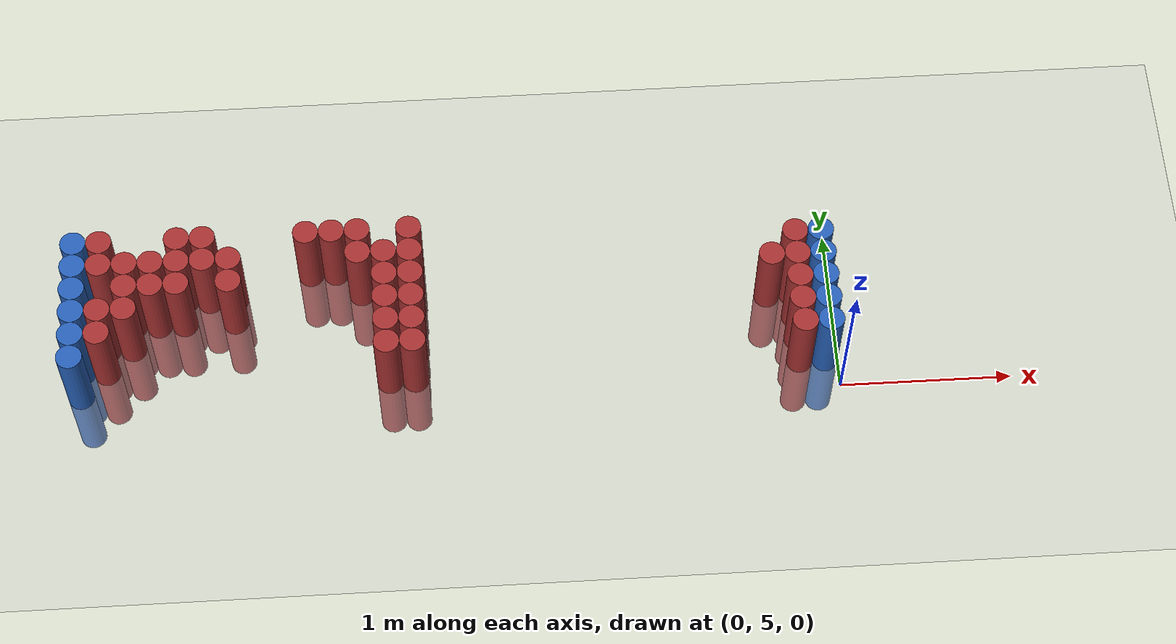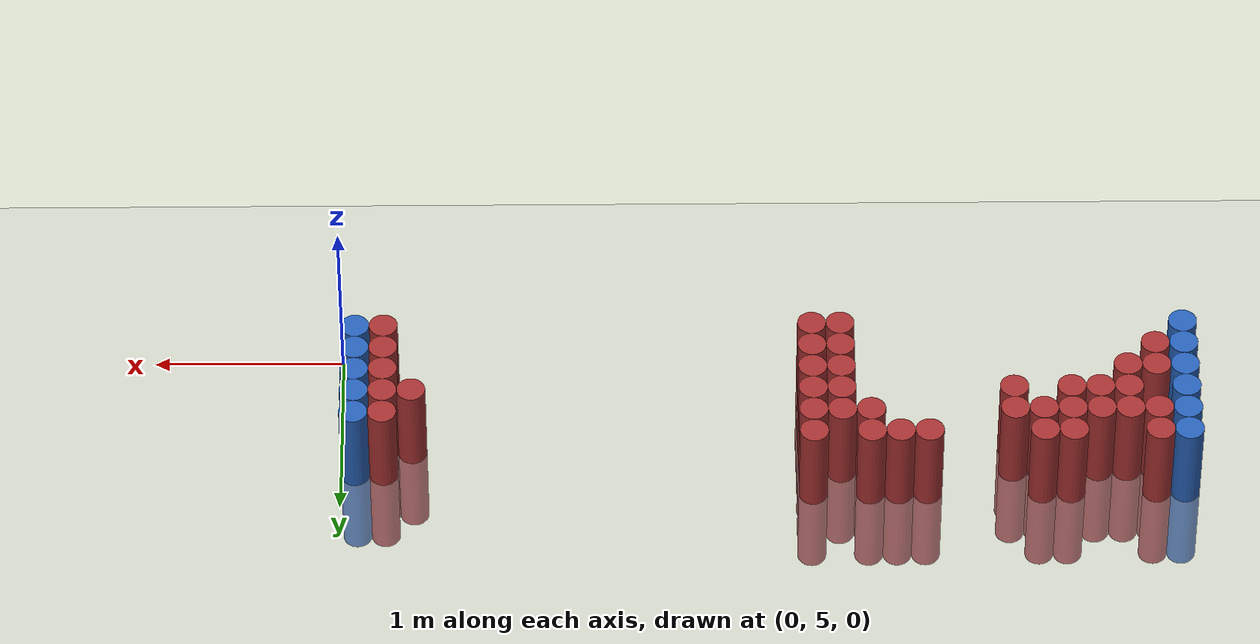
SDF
<sdf version="1.6">
 <world name="default">
  <model name="ground_plane">
   <static>1</static>
   <link name="link">
    <collision name="collision">
     <geometry><plane><normal>0 0 1</normal><size>100 100</size></plane></geometry>
     <surface><friction><ode><mu>100</mu><mu2>50</mu2></ode></friction></surface>
    </collision>
    <visual name="visual">
     <cast_shadows>0</cast_shadows>
     <geometry><plane><normal>0 0 1</normal><size>100 100</size></plane></geometry>
     <material>
      <script><uri>file://media/materials/scripts/gazebo.material</uri><name>Gazebo/Grey</name></script>
     </material>
    </visual>
   </link>
  </model>
  <model name="unit_cylinder_96">
   <static>1</static>
   <pose>-4.425000 5.175000 0.000000 0.000000 0.000000 0.000000</pose>
   <link name="link">
    <inertial>
     <mass>1</mass>
     <inertia><ixx>0.145833</ixx><ixy>0</ixy><ixz>0</ixz><iyy>0.145833</iyy><iyz>0</iyz><izz>0.125</izz></inertia>
    </inertial>
    <collision name="collision">
     <geometry><cylinder><radius>0.075000</radius><length>1</length></cylinder></geometry>
    </collision>
    <visual name="visual">
     <geometry><cylinder><radius>0.075000</radius><length>1</length></cylinder></geometry>
     <material>
      <ambient>0.152000 0.379000 0.720000 1</ambient>
      <diffuse>0.152000 0.379000 0.720000 1</diffuse>
     </material>
     <material>
      <script><name>Gazebo/Grey</name><uri>file://media/materials/scripts/gazebo.material</uri></script>
     </material>
    </visual>
   </link>
  </model>
  <model name="unit_cylinder_97">
   <static>1</static>
   <pose>-4.425000 5.325000 0.000000 0.000000 0.000000 0.000000</pose>
   <link name="link">
    <inertial>
     <mass>1</mass>
     <inertia><ixx>0.145833</ixx><ixy>0</ixy><ixz>0</ixz><iyy>0.145833</iyy><iyz>0</iyz><izz>0.125</izz></inertia>
    </inertial>
    <collision name="collision">
     <geometry><cylinder><radius>0.075000</radius><length>1</length></cylinder></geometry>
    </collision>
    <visual name="visual">
     <geometry><cylinder><radius>0.075000</radius><length>1</length></cylinder></geometry>
     <material>
      <ambient>0.152000 0.379000 0.720000 1</ambient>
      <diffuse>0.152000 0.379000 0.720000 1</diffuse>
     </material>
     <material>
      <script><name>Gazebo/Grey</name><uri>file://media/materials/scripts/gazebo.material</uri></script>
     </material>
    </visual>
   </link>
  </model>
  <model name="unit_cylinder_98">
   <static>1</static>
   <pose>-4.425000 5.475000 0.000000 0.000000 0.000000 0.000000</pose>
   <link name="link">
    <inertial>
     <mass>1</mass>
     <inertia><ixx>0.145833</ixx><ixy>0</ixy><ixz>0</ixz><iyy>0.145833</iyy><iyz>0</iyz><izz>0.125</izz></inertia>
    </inertial>
    <collision name="collision">
     <geometry><cylinder><radius>0.075000</radius><length>1</length></cylinder></geometry>
    </collision>
    <visual name="visual">
     <geometry><cylinder><radius>0.075000</radius><length>1</length></cylinder></geometry>
     <material>
      <ambient>0.152000 0.379000 0.720000 1</ambient>
      <diffuse>0.152000 0.379000 0.720000 1</diffuse>
     </material>
     <material>
      <script><name>Gazebo/Grey</name><uri>file://media/materials/scripts/gazebo.material</uri></script>
     </material>
    </visual>
   </link>
  </model>
  <model name="unit_cylinder_99">
   <static>1</static>
   <pose>-4.425000 5.625000 0.000000 0.000000 0.000000 0.000000</pose>
   <link name="link">
    <inertial>
     <mass>1</mass>
     <inertia><ixx>0.145833</ixx><ixy>0</ixy><ixz>0</ixz><iyy>0.145833</iyy><iyz>0</iyz><izz>0.125</izz></inertia>
    </inertial>
    <collision name="collision">
     <geometry><cylinder><radius>0.075000</radius><length>1</length></cylinder></geometry>
    </collision>
    <visual name="visual">
     <geometry><cylinder><radius>0.075000</radius><length>1</length></cylinder></geometry>
     <material>
      <ambient>0.152000 0.379000 0.720000 1</ambient>
      <diffuse>0.152000 0.379000 0.720000 1</diffuse>
     </material>
     <material>
      <script><name>Gazebo/Grey</name><uri>file://media/materials/scripts/gazebo.material</uri></script>
     </material>
    </visual>
   </link>
  </model>
  <model name="unit_cylinder_100">
   <static>1</static>
   <pose>-4.425000 5.775000 0.000000 0.000000 0.000000 0.000000</pose>
   <link name="link">
    <inertial>
     <mass>1</mass>
     <inertia><ixx>0.145833</ixx><ixy>0</ixy><ixz>0</ixz><iyy>0.145833</iyy><iyz>0</iyz><izz>0.125</izz></inertia>
    </inertial>
    <collision name="collision">
     <geometry><cylinder><radius>0.075000</radius><length>1</length></cylinder></geometry>
    </collision>
    <visual name="visual">
     <geometry><cylinder><radius>0.075000</radius><length>1</length></cylinder></geometry>
     <material>
      <ambient>0.152000 0.379000 0.720000 1</ambient>
      <diffuse>0.152000 0.379000 0.720000 1</diffuse>
     </material>
     <material>
      <script><name>Gazebo/Grey</name><uri>file://media/materials/scripts/gazebo.material</uri></script>
     </material>
    </visual>
   </link>
  </model>
  <model name="unit_cylinder_101">
   <static>1</static>
   <pose>-4.425000 5.925000 0.000000 0.000000 0.000000 0.000000</pose>
   <link name="link">
    <inertial>
     <mass>1</mass>
     <inertia><ixx>0.145833</ixx><ixy>0</ixy><ixz>0</ixz><iyy>0.145833</iyy><iyz>0</iyz><izz>0.125</izz></inertia>
    </inertial>
    <collision name="collision">
     <geometry><cylinder><radius>0.075000</radius><length>1</length></cylinder></geometry>
    </collision>
    <visual name="visual">
     <geometry><cylinder><radius>0.075000</radius><length>1</length></cylinder></geometry>
     <material>
      <ambient>0.152000 0.379000 0.720000 1</ambient>
      <diffuse>0.152000 0.379000 0.720000 1</diffuse>
     </material>
     <material>
      <script><name>Gazebo/Grey</name><uri>file://media/materials/scripts/gazebo.material</uri></script>
     </material>
    </visual>
   </link>
  </model>
  <model name="unit_cylinder_126">
   <static>1</static>
   <pose>-4.275000 5.325000 0.000000 0.000000 0.000000 0.000000</pose>
   <link name="link">
    <inertial>
     <mass>1</mass>
     <inertia><ixx>0.145833</ixx><ixy>0</ixy><ixz>0</ixz><iyy>0.145833</iyy><iyz>0</iyz><izz>0.125</izz></inertia>
    </inertial>
    <collision name="collision">
     <geometry><cylinder><radius>0.075000</radius><length>1</length></cylinder></geometry>
    </collision>
    <visual name="visual">
     <geometry><cylinder><radius>0.075000</radius><length>1</length></cylinder></geometry>
     <material>
      <ambient>0.648000 0.192000 0.192000 1</ambient>
      <diffuse>0.648000 0.192000 0.192000 1</diffuse>
     </material>
     <material>
      <script><name>Gazebo/Grey</name><uri>file://media/materials/scripts/gazebo.material</uri></script>
     </material>
    </visual>
   </link>
  </model>
  <model name="unit_cylinder_127">
   <static>1</static>
   <pose>-4.275000 5.475000 0.000000 0.000000 0.000000 0.000000</pose>
   <link name="link">
    <inertial>
     <mass>1</mass>
     <inertia><ixx>0.145833</ixx><ixy>0</ixy><ixz>0</ixz><iyy>0.145833</iyy><iyz>0</iyz><izz>0.125</izz></inertia>
    </inertial>
    <collision name="collision">
     <geometry><cylinder><radius>0.075000</radius><length>1</length></cylinder></geometry>
    </collision>
    <visual name="visual">
     <geometry><cylinder><radius>0.075000</radius><length>1</length></cylinder></geometry>
     <material>
      <ambient>0.648000 0.192000 0.192000 1</ambient>
      <diffuse>0.648000 0.192000 0.192000 1</diffuse>
     </material>
     <material>
      <script><name>Gazebo/Grey</name><uri>file://media/materials/scripts/gazebo.material</uri></script>
     </material>
    </visual>
   </link>
  </model>
  <model name="unit_cylinder_128">
   <static>1</static>
   <pose>-4.275000 5.775000 0.000000 0.000000 0.000000 0.000000</pose>
   <link name="link">
    <inertial>
     <mass>1</mass>
     <inertia><ixx>0.145833</ixx><ixy>0</ixy><ixz>0</ixz><iyy>0.145833</iyy><iyz>0</iyz><izz>0.125</izz></inertia>
    </inertial>
    <collision name="collision">
     <geometry><cylinder><radius>0.075000</radius><length>1</length></cylinder></geometry>
    </collision>
    <visual name="visual">
     <geometry><cylinder><radius>0.075000</radius><length>1</length></cylinder></geometry>
     <material>
      <ambient>0.648000 0.192000 0.192000 1</ambient>
      <diffuse>0.648000 0.192000 0.192000 1</diffuse>
     </material>
     <material>
      <script><name>Gazebo/Grey</name><uri>file://media/materials/scripts/gazebo.material</uri></script>
     </material>
    </visual>
   </link>
  </model>
  <model name="unit_cylinder_129">
   <static>1</static>
   <pose>-4.275000 5.925000 0.000000 0.000000 0.000000 0.000000</pose>
   <link name="link">
    <inertial>
     <mass>1</mass>
     <inertia><ixx>0.145833</ixx><ixy>0</ixy><ixz>0</ixz><iyy>0.145833</iyy><iyz>0</iyz><izz>0.125</izz></inertia>
    </inertial>
    <collision name="collision">
     <geometry><cylinder><radius>0.075000</radius><length>1</length></cylinder></geometry>
    </collision>
    <visual name="visual">
     <geometry><cylinder><radius>0.075000</radius><length>1</length></cylinder></geometry>
     <material>
      <ambient>0.648000 0.192000 0.192000 1</ambient>
      <diffuse>0.648000 0.192000 0.192000 1</diffuse>
     </material>
     <material>
      <script><name>Gazebo/Grey</name><uri>file://media/materials/scripts/gazebo.material</uri></script>
     </material>
    </visual>
   </link>
  </model>
  <model name="unit_cylinder_145">
   <static>1</static>
   <pose>-4.125000 5.475000 0.000000 0.000000 0.000000 0.000000</pose>
   <link name="link">
    <inertial>
     <mass>1</mass>
     <inertia><ixx>0.145833</ixx><ixy>0</ixy><ixz>0</ixz><iyy>0.145833</iyy><iyz>0</iyz><izz>0.125</izz></inertia>
    </inertial>
    <collision name="collision">
     <geometry><cylinder><radius>0.075000</radius><length>1</length></cylinder></geometry>
    </collision>
    <visual name="visual">
     <geometry><cylinder><radius>0.075000</radius><length>1</length></cylinder></geometry>
     <material>
      <ambient>0.648000 0.192000 0.192000 1</ambient>
      <diffuse>0.648000 0.192000 0.192000 1</diffuse>
     </material>
     <material>
      <script><name>Gazebo/Grey</name><uri>file://media/materials/scripts/gazebo.material</uri></script>
     </material>
    </visual>
   </link>
  </model>
  <model name="unit_cylinder_146">
   <static>1</static>
   <pose>-4.125000 5.625000 0.000000 0.000000 0.000000 0.000000</pose>
   <link name="link">
    <inertial>
     <mass>1</mass>
     <inertia><ixx>0.145833</ixx><ixy>0</ixy><ixz>0</ixz><iyy>0.145833</iyy><iyz>0</iyz><izz>0.125</izz></inertia>
    </inertial>
    <collision name="collision">
     <geometry><cylinder><radius>0.075000</radius><length>1</length></cylinder></geometry>
    </collision>
    <visual name="visual">
     <geometry><cylinder><radius>0.075000</radius><length>1</length></cylinder></geometry>
     <material>
      <ambient>0.648000 0.192000 0.192000 1</ambient>
      <diffuse>0.648000 0.192000 0.192000 1</diffuse>
     </material>
     <material>
      <script><name>Gazebo/Grey</name><uri>file://media/materials/scripts/gazebo.material</uri></script>
     </material>
    </visual>
   </link>
  </model>
  <model name="unit_cylinder_147">
   <static>1</static>
   <pose>-4.125000 5.775000 0.000000 0.000000 0.000000 0.000000</pose>
   <link name="link">
    <inertial>
     <mass>1</mass>
     <inertia><ixx>0.145833</ixx><ixy>0</ixy><ixz>0</ixz><iyy>0.145833</iyy><iyz>0</iyz><izz>0.125</izz></inertia>
    </inertial>
    <collision name="collision">
     <geometry><cylinder><radius>0.075000</radius><length>1</length></cylinder></geometry>
    </collision>
    <visual name="visual">
     <geometry><cylinder><radius>0.075000</radius><length>1</length></cylinder></geometry>
     <material>
      <ambient>0.648000 0.192000 0.192000 1</ambient>
      <diffuse>0.648000 0.192000 0.192000 1</diffuse>
     </material>
     <material>
      <script><name>Gazebo/Grey</name><uri>file://media/materials/scripts/gazebo.material</uri></script>
     </material>
    </visual>
   </link>
  </model>
  <model name="unit_cylinder_153">
   <static>1</static>
   <pose>-3.975000 5.625000 0.000000 0.000000 0.000000 0.000000</pose>
   <link name="link">
    <inertial>
     <mass>1</mass>
     <inertia><ixx>0.145833</ixx><ixy>0</ixy><ixz>0</ixz><iyy>0.145833</iyy><iyz>0</iyz><izz>0.125</izz></inertia>
    </inertial>
    <collision name="collision">
     <geometry><cylinder><radius>0.075000</radius><length>1</length></cylinder></geometry>
    </collision>
    <visual name="visual">
     <geometry><cylinder><radius>0.075000</radius><length>1</length></cylinder></geometry>
     <material>
      <ambient>0.648000 0.192000 0.192000 1</ambient>
      <diffuse>0.648000 0.192000 0.192000 1</diffuse>
     </material>
     <material>
      <script><name>Gazebo/Grey</name><uri>file://media/materials/scripts/gazebo.material</uri></script>
     </material>
    </visual>
   </link>
  </model>
  <model name="unit_cylinder_154">
   <static>1</static>
   <pose>-3.975000 5.775000 0.000000 0.000000 0.000000 0.000000</pose>
   <link name="link">
    <inertial>
     <mass>1</mass>
     <inertia><ixx>0.145833</ixx><ixy>0</ixy><ixz>0</ixz><iyy>0.145833</iyy><iyz>0</iyz><izz>0.125</izz></inertia>
    </inertial>
    <collision name="collision">
     <geometry><cylinder><radius>0.075000</radius><length>1</length></cylinder></geometry>
    </collision>
    <visual name="visual">
     <geometry><cylinder><radius>0.075000</radius><length>1</length></cylinder></geometry>
     <material>
      <ambient>0.648000 0.192000 0.192000 1</ambient>
      <diffuse>0.648000 0.192000 0.192000 1</diffuse>
     </material>
     <material>
      <script><name>Gazebo/Grey</name><uri>file://media/materials/scripts/gazebo.material</uri></script>
     </material>
    </visual>
   </link>
  </model>
  <model name="unit_cylinder_158">
   <static>1</static>
   <pose>-3.825000 5.625000 0.000000 0.000000 0.000000 0.000000</pose>
   <link name="link">
    <inertial>
     <mass>1</mass>
     <inertia><ixx>0.145833</ixx><ixy>0</ixy><ixz>0</ixz><iyy>0.145833</iyy><iyz>0</iyz><izz>0.125</izz></inertia>
    </inertial>
    <collision name="collision">
     <geometry><cylinder><radius>0.075000</radius><length>1</length></cylinder></geometry>
    </collision>
    <visual name="visual">
     <geometry><cylinder><radius>0.075000</radius><length>1</length></cylinder></geometry>
     <material>
      <ambient>0.648000 0.192000 0.192000 1</ambient>
      <diffuse>0.648000 0.192000 0.192000 1</diffuse>
     </material>
     <material>
      <script><name>Gazebo/Grey</name><uri>file://media/materials/scripts/gazebo.material</uri></script>
     </material>
    </visual>
   </link>
  </model>
  <model name="unit_cylinder_159">
   <static>1</static>
   <pose>-3.825000 5.775000 0.000000 0.000000 0.000000 0.000000</pose>
   <link name="link">
    <inertial>
     <mass>1</mass>
     <inertia><ixx>0.145833</ixx><ixy>0</ixy><ixz>0</ixz><iyy>0.145833</iyy><iyz>0</iyz><izz>0.125</izz></inertia>
    </inertial>
    <collision name="collision">
     <geometry><cylinder><radius>0.075000</radius><length>1</length></cylinder></geometry>
    </collision>
    <visual name="visual">
     <geometry><cylinder><radius>0.075000</radius><length>1</length></cylinder></geometry>
     <material>
      <ambient>0.648000 0.192000 0.192000 1</ambient>
      <diffuse>0.648000 0.192000 0.192000 1</diffuse>
     </material>
     <material>
      <script><name>Gazebo/Grey</name><uri>file://media/materials/scripts/gazebo.material</uri></script>
     </material>
    </visual>
   </link>
  </model>
  <model name="unit_cylinder_160">
   <static>1</static>
   <pose>-3.825000 5.925000 0.000000 0.000000 0.000000 0.000000</pose>
   <link name="link">
    <inertial>
     <mass>1</mass>
     <inertia><ixx>0.145833</ixx><ixy>0</ixy><ixz>0</ixz><iyy>0.145833</iyy><iyz>0</iyz><izz>0.125</izz></inertia>
    </inertial>
    <collision name="collision">
     <geometry><cylinder><radius>0.075000</radius><length>1</length></cylinder></geometry>
    </collision>
    <visual name="visual">
     <geometry><cylinder><radius>0.075000</radius><length>1</length></cylinder></geometry>
     <material>
      <ambient>0.648000 0.192000 0.192000 1</ambient>
      <diffuse>0.648000 0.192000 0.192000 1</diffuse>
     </material>
     <material>
      <script><name>Gazebo/Grey</name><uri>file://media/materials/scripts/gazebo.material</uri></script>
     </material>
    </visual>
   </link>
  </model>
  <model name="unit_cylinder_164">
   <static>1</static>
   <pose>-3.675000 5.775000 0.000000 0.000000 0.000000 0.000000</pose>
   <link name="link">
    <inertial>
     <mass>1</mass>
     <inertia><ixx>0.145833</ixx><ixy>0</ixy><ixz>0</ixz><iyy>0.145833</iyy><iyz>0</iyz><izz>0.125</izz></inertia>
    </inertial>
    <collision name="collision">
     <geometry><cylinder><radius>0.075000</radius><length>1</length></cylinder></geometry>
    </collision>
    <visual name="visual">
     <geometry><cylinder><radius>0.075000</radius><length>1</length></cylinder></geometry>
     <material>
      <ambient>0.648000 0.192000 0.192000 1</ambient>
      <diffuse>0.648000 0.192000 0.192000 1</diffuse>
     </material>
     <material>
      <script><name>Gazebo/Grey</name><uri>file://media/materials/scripts/gazebo.material</uri></script>
     </material>
    </visual>
   </link>
  </model>
  <model name="unit_cylinder_165">
   <static>1</static>
   <pose>-3.675000 5.925000 0.000000 0.000000 0.000000 0.000000</pose>
   <link name="link">
    <inertial>
     <mass>1</mass>
     <inertia><ixx>0.145833</ixx><ixy>0</ixy><ixz>0</ixz><iyy>0.145833</iyy><iyz>0</iyz><izz>0.125</izz></inertia>
    </inertial>
    <collision name="collision">
     <geometry><cylinder><radius>0.075000</radius><length>1</length></cylinder></geometry>
    </collision>
    <visual name="visual">
     <geometry><cylinder><radius>0.075000</radius><length>1</length></cylinder></geometry>
     <material>
      <ambient>0.648000 0.192000 0.192000 1</ambient>
      <diffuse>0.648000 0.192000 0.192000 1</diffuse>
     </material>
     <material>
      <script><name>Gazebo/Grey</name><uri>file://media/materials/scripts/gazebo.material</uri></script>
     </material>
    </visual>
   </link>
  </model>
  <model name="unit_cylinder_171">
   <static>1</static>
   <pose>-3.525000 5.625000 0.000000 0.000000 0.000000 0.000000</pose>
   <link name="link">
    <inertial>
     <mass>1</mass>
     <inertia><ixx>0.145833</ixx><ixy>0</ixy><ixz>0</ixz><iyy>0.145833</iyy><iyz>0</iyz><izz>0.125</izz></inertia>
    </inertial>
    <collision name="collision">
     <geometry><cylinder><radius>0.075000</radius><length>1</length></cylinder></geometry>
    </collision>
    <visual name="visual">
     <geometry><cylinder><radius>0.075000</radius><length>1</length></cylinder></geometry>
     <material>
      <ambient>0.648000 0.192000 0.192000 1</ambient>
      <diffuse>0.648000 0.192000 0.192000 1</diffuse>
     </material>
     <material>
      <script><name>Gazebo/Grey</name><uri>file://media/materials/scripts/gazebo.material</uri></script>
     </material>
    </visual>
   </link>
  </model>
  <model name="unit_cylinder_172">
   <static>1</static>
   <pose>-3.525000 5.775000 0.000000 0.000000 0.000000 0.000000</pose>
   <link name="link">
    <inertial>
     <mass>1</mass>
     <inertia><ixx>0.145833</ixx><ixy>0</ixy><ixz>0</ixz><iyy>0.145833</iyy><iyz>0</iyz><izz>0.125</izz></inertia>
    </inertial>
    <collision name="collision">
     <geometry><cylinder><radius>0.075000</radius><length>1</length></cylinder></geometry>
    </collision>
    <visual name="visual">
     <geometry><cylinder><radius>0.075000</radius><length>1</length></cylinder></geometry>
     <material>
      <ambient>0.648000 0.192000 0.192000 1</ambient>
      <diffuse>0.648000 0.192000 0.192000 1</diffuse>
     </material>
     <material>
      <script><name>Gazebo/Grey</name><uri>file://media/materials/scripts/gazebo.material</uri></script>
     </material>
    </visual>
   </link>
  </model>
  <model name="unit_cylinder_189">
   <static>1</static>
   <pose>-3.075000 5.925000 0.000000 0.000000 0.000000 0.000000</pose>
   <link name="link">
    <inertial>
     <mass>1</mass>
     <inertia><ixx>0.145833</ixx><ixy>0</ixy><ixz>0</ixz><iyy>0.145833</iyy><iyz>0</iyz><izz>0.125</izz></inertia>
    </inertial>
    <collision name="collision">
     <geometry><cylinder><radius>0.075000</radius><length>1</length></cylinder></geometry>
    </collision>
    <visual name="visual">
     <geometry><cylinder><radius>0.075000</radius><length>1</length></cylinder></geometry>
     <material>
      <ambient>0.648000 0.192000 0.192000 1</ambient>
      <diffuse>0.648000 0.192000 0.192000 1</diffuse>
     </material>
     <material>
      <script><name>Gazebo/Grey</name><uri>file://media/materials/scripts/gazebo.material</uri></script>
     </material>
    </visual>
   </link>
  </model>
  <model name="unit_cylinder_200">
   <static>1</static>
   <pose>-2.925000 5.925000 0.000000 0.000000 0.000000 0.000000</pose>
   <link name="link">
    <inertial>
     <mass>1</mass>
     <inertia><ixx>0.145833</ixx><ixy>0</ixy><ixz>0</ixz><iyy>0.145833</iyy><iyz>0</iyz><izz>0.125</izz></inertia>
    </inertial>
    <collision name="collision">
     <geometry><cylinder><radius>0.075000</radius><length>1</length></cylinder></geometry>
    </collision>
    <visual name="visual">
     <geometry><cylinder><radius>0.075000</radius><length>1</length></cylinder></geometry>
     <material>
      <ambient>0.648000 0.192000 0.192000 1</ambient>
      <diffuse>0.648000 0.192000 0.192000 1</diffuse>
     </material>
     <material>
      <script><name>Gazebo/Grey</name><uri>file://media/materials/scripts/gazebo.material</uri></script>
     </material>
    </visual>
   </link>
  </model>
  <model name="unit_cylinder_210">
   <static>1</static>
   <pose>-2.775000 5.775000 0.000000 0.000000 0.000000 0.000000</pose>
   <link name="link">
    <inertial>
     <mass>1</mass>
     <inertia><ixx>0.145833</ixx><ixy>0</ixy><ixz>0</ixz><iyy>0.145833</iyy><iyz>0</iyz><izz>0.125</izz></inertia>
    </inertial>
    <collision name="collision">
     <geometry><cylinder><radius>0.075000</radius><length>1</length></cylinder></geometry>
    </collision>
    <visual name="visual">
     <geometry><cylinder><radius>0.075000</radius><length>1</length></cylinder></geometry>
     <material>
      <ambient>0.648000 0.192000 0.192000 1</ambient>
      <diffuse>0.648000 0.192000 0.192000 1</diffuse>
     </material>
     <material>
      <script><name>Gazebo/Grey</name><uri>file://media/materials/scripts/gazebo.material</uri></script>
     </material>
    </visual>
   </link>
  </model>
  <model name="unit_cylinder_211">
   <static>1</static>
   <pose>-2.775000 5.925000 0.000000 0.000000 0.000000 0.000000</pose>
   <link name="link">
    <inertial>
     <mass>1</mass>
     <inertia><ixx>0.145833</ixx><ixy>0</ixy><ixz>0</ixz><iyy>0.145833</iyy><iyz>0</iyz><izz>0.125</izz></inertia>
    </inertial>
    <collision name="collision">
     <geometry><cylinder><radius>0.075000</radius><length>1</length></cylinder></geometry>
    </collision>
    <visual name="visual">
     <geometry><cylinder><radius>0.075000</radius><length>1</length></cylinder></geometry>
     <material>
      <ambient>0.648000 0.192000 0.192000 1</ambient>
      <diffuse>0.648000 0.192000 0.192000 1</diffuse>
     </material>
     <material>
      <script><name>Gazebo/Grey</name><uri>file://media/materials/scripts/gazebo.material</uri></script>
     </material>
    </visual>
   </link>
  </model>
  <model name="unit_cylinder_220">
   <static>1</static>
   <pose>-2.625000 5.175000 0.000000 0.000000 0.000000 0.000000</pose>
   <link name="link">
    <inertial>
     <mass>1</mass>
     <inertia><ixx>0.145833</ixx><ixy>0</ixy><ixz>0</ixz><iyy>0.145833</iyy><iyz>0</iyz><izz>0.125</izz></inertia>
    </inertial>
    <collision name="collision">
     <geometry><cylinder><radius>0.075000</radius><length>1</length></cylinder></geometry>
    </collision>
    <visual name="visual">
     <geometry><cylinder><radius>0.075000</radius><length>1</length></cylinder></geometry>
     <material>
      <ambient>0.648000 0.192000 0.192000 1</ambient>
      <diffuse>0.648000 0.192000 0.192000 1</diffuse>
     </material>
     <material>
      <script><name>Gazebo/Grey</name><uri>file://media/materials/scripts/gazebo.material</uri></script>
     </material>
    </visual>
   </link>
  </model>
  <model name="unit_cylinder_221">
   <static>1</static>
   <pose>-2.625000 5.325000 0.000000 0.000000 0.000000 0.000000</pose>
   <link name="link">
    <inertial>
     <mass>1</mass>
     <inertia><ixx>0.145833</ixx><ixy>0</ixy><ixz>0</ixz><iyy>0.145833</iyy><iyz>0</iyz><izz>0.125</izz></inertia>
    </inertial>
    <collision name="collision">
     <geometry><cylinder><radius>0.075000</radius><length>1</length></cylinder></geometry>
    </collision>
    <visual name="visual">
     <geometry><cylinder><radius>0.075000</radius><length>1</length></cylinder></geometry>
     <material>
      <ambient>0.648000 0.192000 0.192000 1</ambient>
      <diffuse>0.648000 0.192000 0.192000 1</diffuse>
     </material>
     <material>
      <script><name>Gazebo/Grey</name><uri>file://media/materials/scripts/gazebo.material</uri></script>
     </material>
    </visual>
   </link>
  </model>
  <model name="unit_cylinder_222">
   <static>1</static>
   <pose>-2.625000 5.475000 0.000000 0.000000 0.000000 0.000000</pose>
   <link name="link">
    <inertial>
     <mass>1</mass>
     <inertia><ixx>0.145833</ixx><ixy>0</ixy><ixz>0</ixz><iyy>0.145833</iyy><iyz>0</iyz><izz>0.125</izz></inertia>
    </inertial>
    <collision name="collision">
     <geometry><cylinder><radius>0.075000</radius><length>1</length></cylinder></geometry>
    </collision>
    <visual name="visual">
     <geometry><cylinder><radius>0.075000</radius><length>1</length></cylinder></geometry>
     <material>
      <ambient>0.648000 0.192000 0.192000 1</ambient>
      <diffuse>0.648000 0.192000 0.192000 1</diffuse>
     </material>
     <material>
      <script><name>Gazebo/Grey</name><uri>file://media/materials/scripts/gazebo.material</uri></script>
     </material>
    </visual>
   </link>
  </model>
  <model name="unit_cylinder_223">
   <static>1</static>
   <pose>-2.625000 5.625000 0.000000 0.000000 0.000000 0.000000</pose>
   <link name="link">
    <inertial>
     <mass>1</mass>
     <inertia><ixx>0.145833</ixx><ixy>0</ixy><ixz>0</ixz><iyy>0.145833</iyy><iyz>0</iyz><izz>0.125</izz></inertia>
    </inertial>
    <collision name="collision">
     <geometry><cylinder><radius>0.075000</radius><length>1</length></cylinder></geometry>
    </collision>
    <visual name="visual">
     <geometry><cylinder><radius>0.075000</radius><length>1</length></cylinder></geometry>
     <material>
      <ambient>0.648000 0.192000 0.192000 1</ambient>
      <diffuse>0.648000 0.192000 0.192000 1</diffuse>
     </material>
     <material>
      <script><name>Gazebo/Grey</name><uri>file://media/materials/scripts/gazebo.material</uri></script>
     </material>
    </visual>
   </link>
  </model>
  <model name="unit_cylinder_224">
   <static>1</static>
   <pose>-2.625000 5.775000 0.000000 0.000000 0.000000 0.000000</pose>
   <link name="link">
    <inertial>
     <mass>1</mass>
     <inertia><ixx>0.145833</ixx><ixy>0</ixy><ixz>0</ixz><iyy>0.145833</iyy><iyz>0</iyz><izz>0.125</izz></inertia>
    </inertial>
    <collision name="collision">
     <geometry><cylinder><radius>0.075000</radius><length>1</length></cylinder></geometry>
    </collision>
    <visual name="visual">
     <geometry><cylinder><radius>0.075000</radius><length>1</length></cylinder></geometry>
     <material>
      <ambient>0.648000 0.192000 0.192000 1</ambient>
      <diffuse>0.648000 0.192000 0.192000 1</diffuse>
     </material>
     <material>
      <script><name>Gazebo/Grey</name><uri>file://media/materials/scripts/gazebo.material</uri></script>
     </material>
    </visual>
   </link>
  </model>
  <model name="unit_cylinder_229">
   <static>1</static>
   <pose>-2.475000 5.175000 0.000000 0.000000 0.000000 0.000000</pose>
   <link name="link">
    <inertial>
     <mass>1</mass>
     <inertia><ixx>0.145833</ixx><ixy>0</ixy><ixz>0</ixz><iyy>0.145833</iyy><iyz>0</iyz><izz>0.125</izz></inertia>
    </inertial>
    <collision name="collision">
     <geometry><cylinder><radius>0.075000</radius><length>1</length></cylinder></geometry>
    </collision>
    <visual name="visual">
     <geometry><cylinder><radius>0.075000</radius><length>1</length></cylinder></geometry>
     <material>
      <ambient>0.648000 0.192000 0.192000 1</ambient>
      <diffuse>0.648000 0.192000 0.192000 1</diffuse>
     </material>
     <material>
      <script><name>Gazebo/Grey</name><uri>file://media/materials/scripts/gazebo.material</uri></script>
     </material>
    </visual>
   </link>
  </model>
  <model name="unit_cylinder_230">
   <static>1</static>
   <pose>-2.475000 5.325000 0.000000 0.000000 0.000000 0.000000</pose>
   <link name="link">
    <inertial>
     <mass>1</mass>
     <inertia><ixx>0.145833</ixx><ixy>0</ixy><ixz>0</ixz><iyy>0.145833</iyy><iyz>0</iyz><izz>0.125</izz></inertia>
    </inertial>
    <collision name="collision">
     <geometry><cylinder><radius>0.075000</radius><length>1</length></cylinder></geometry>
    </collision>
    <visual name="visual">
     <geometry><cylinder><radius>0.075000</radius><length>1</length></cylinder></geometry>
     <material>
      <ambient>0.648000 0.192000 0.192000 1</ambient>
      <diffuse>0.648000 0.192000 0.192000 1</diffuse>
     </material>
     <material>
      <script><name>Gazebo/Grey</name><uri>file://media/materials/scripts/gazebo.material</uri></script>
     </material>
    </visual>
   </link>
  </model>
  <model name="unit_cylinder_231">
   <static>1</static>
   <pose>-2.475000 5.475000 0.000000 0.000000 0.000000 0.000000</pose>
   <link name="link">
    <inertial>
     <mass>1</mass>
     <inertia><ixx>0.145833</ixx><ixy>0</ixy><ixz>0</ixz><iyy>0.145833</iyy><iyz>0</iyz><izz>0.125</izz></inertia>
    </inertial>
    <collision name="collision">
     <geometry><cylinder><radius>0.075000</radius><length>1</length></cylinder></geometry>
    </collision>
    <visual name="visual">
     <geometry><cylinder><radius>0.075000</radius><length>1</length></cylinder></geometry>
     <material>
      <ambient>0.648000 0.192000 0.192000 1</ambient>
      <diffuse>0.648000 0.192000 0.192000 1</diffuse>
     </material>
     <material>
      <script><name>Gazebo/Grey</name><uri>file://media/materials/scripts/gazebo.material</uri></script>
     </material>
    </visual>
   </link>
  </model>
  <model name="unit_cylinder_232">
   <static>1</static>
   <pose>-2.475000 5.625000 0.000000 0.000000 0.000000 0.000000</pose>
   <link name="link">
    <inertial>
     <mass>1</mass>
     <inertia><ixx>0.145833</ixx><ixy>0</ixy><ixz>0</ixz><iyy>0.145833</iyy><iyz>0</iyz><izz>0.125</izz></inertia>
    </inertial>
    <collision name="collision">
     <geometry><cylinder><radius>0.075000</radius><length>1</length></cylinder></geometry>
    </collision>
    <visual name="visual">
     <geometry><cylinder><radius>0.075000</radius><length>1</length></cylinder></geometry>
     <material>
      <ambient>0.648000 0.192000 0.192000 1</ambient>
      <diffuse>0.648000 0.192000 0.192000 1</diffuse>
     </material>
     <material>
      <script><name>Gazebo/Grey</name><uri>file://media/materials/scripts/gazebo.material</uri></script>
     </material>
    </visual>
   </link>
  </model>
  <model name="unit_cylinder_233">
   <static>1</static>
   <pose>-2.475000 5.775000 0.000000 0.000000 0.000000 0.000000</pose>
   <link name="link">
    <inertial>
     <mass>1</mass>
     <inertia><ixx>0.145833</ixx><ixy>0</ixy><ixz>0</ixz><iyy>0.145833</iyy><iyz>0</iyz><izz>0.125</izz></inertia>
    </inertial>
    <collision name="collision">
     <geometry><cylinder><radius>0.075000</radius><length>1</length></cylinder></geometry>
    </collision>
    <visual name="visual">
     <geometry><cylinder><radius>0.075000</radius><length>1</length></cylinder></geometry>
     <material>
      <ambient>0.648000 0.192000 0.192000 1</ambient>
      <diffuse>0.648000 0.192000 0.192000 1</diffuse>
     </material>
     <material>
      <script><name>Gazebo/Grey</name><uri>file://media/materials/scripts/gazebo.material</uri></script>
     </material>
    </visual>
   </link>
  </model>
  <model name="unit_cylinder_234">
   <static>1</static>
   <pose>-2.475000 5.925000 0.000000 0.000000 0.000000 0.000000</pose>
   <link name="link">
    <inertial>
     <mass>1</mass>
     <inertia><ixx>0.145833</ixx><ixy>0</ixy><ixz>0</ixz><iyy>0.145833</iyy><iyz>0</iyz><izz>0.125</izz></inertia>
    </inertial>
    <collision name="collision">
     <geometry><cylinder><radius>0.075000</radius><length>1</length></cylinder></geometry>
    </collision>
    <visual name="visual">
     <geometry><cylinder><radius>0.075000</radius><length>1</length></cylinder></geometry>
     <material>
      <ambient>0.648000 0.192000 0.192000 1</ambient>
      <diffuse>0.648000 0.192000 0.192000 1</diffuse>
     </material>
     <material>
      <script><name>Gazebo/Grey</name><uri>file://media/materials/scripts/gazebo.material</uri></script>
     </material>
    </visual>
   </link>
  </model>
  <model name="unit_cylinder_292">
   <static>1</static>
   <pose>-0.375000 5.625000 0.000000 0.000000 0.000000 0.000000</pose>
   <link name="link">
    <inertial>
     <mass>1</mass>
     <inertia><ixx>0.145833</ixx><ixy>0</ixy><ixz>0</ixz><iyy>0.145833</iyy><iyz>0</iyz><izz>0.125</izz></inertia>
    </inertial>
    <collision name="collision">
     <geometry><cylinder><radius>0.075000</radius><length>1</length></cylinder></geometry>
    </collision>
    <visual name="visual">
     <geometry><cylinder><radius>0.075000</radius><length>1</length></cylinder></geometry>
     <material>
      <ambient>0.648000 0.192000 0.192000 1</ambient>
      <diffuse>0.648000 0.192000 0.192000 1</diffuse>
     </material>
     <material>
      <script><name>Gazebo/Grey</name><uri>file://media/materials/scripts/gazebo.material</uri></script>
     </material>
    </visual>
   </link>
  </model>
  <model name="unit_cylinder_294">
   <static>1</static>
   <pose>-0.225000 5.175000 0.000000 0.000000 0.000000 0.000000</pose>
   <link name="link">
    <inertial>
     <mass>1</mass>
     <inertia><ixx>0.145833</ixx><ixy>0</ixy><ixz>0</ixz><iyy>0.145833</iyy><iyz>0</iyz><izz>0.125</izz></inertia>
    </inertial>
    <collision name="collision">
     <geometry><cylinder><radius>0.075000</radius><length>1</length></cylinder></geometry>
    </collision>
    <visual name="visual">
     <geometry><cylinder><radius>0.075000</radius><length>1</length></cylinder></geometry>
     <material>
      <ambient>0.648000 0.192000 0.192000 1</ambient>
      <diffuse>0.648000 0.192000 0.192000 1</diffuse>
     </material>
     <material>
      <script><name>Gazebo/Grey</name><uri>file://media/materials/scripts/gazebo.material</uri></script>
     </material>
    </visual>
   </link>
  </model>
  <model name="unit_cylinder_295">
   <static>1</static>
   <pose>-0.225000 5.325000 0.000000 0.000000 0.000000 0.000000</pose>
   <link name="link">
    <inertial>
     <mass>1</mass>
     <inertia><ixx>0.145833</ixx><ixy>0</ixy><ixz>0</ixz><iyy>0.145833</iyy><iyz>0</iyz><izz>0.125</izz></inertia>
    </inertial>
    <collision name="collision">
     <geometry><cylinder><radius>0.075000</radius><length>1</length></cylinder></geometry>
    </collision>
    <visual name="visual">
     <geometry><cylinder><radius>0.075000</radius><length>1</length></cylinder></geometry>
     <material>
      <ambient>0.648000 0.192000 0.192000 1</ambient>
      <diffuse>0.648000 0.192000 0.192000 1</diffuse>
     </material>
     <material>
      <script><name>Gazebo/Grey</name><uri>file://media/materials/scripts/gazebo.material</uri></script>
     </material>
    </visual>
   </link>
  </model>
  <model name="unit_cylinder_296">
   <static>1</static>
   <pose>-0.225000 5.475000 0.000000 0.000000 0.000000 0.000000</pose>
   <link name="link">
    <inertial>
     <mass>1</mass>
     <inertia><ixx>0.145833</ixx><ixy>0</ixy><ixz>0</ixz><iyy>0.145833</iyy><iyz>0</iyz><izz>0.125</izz></inertia>
    </inertial>
    <collision name="collision">
     <geometry><cylinder><radius>0.075000</radius><length>1</length></cylinder></geometry>
    </collision>
    <visual name="visual">
     <geometry><cylinder><radius>0.075000</radius><length>1</length></cylinder></geometry>
     <material>
      <ambient>0.648000 0.192000 0.192000 1</ambient>
      <diffuse>0.648000 0.192000 0.192000 1</diffuse>
     </material>
     <material>
      <script><name>Gazebo/Grey</name><uri>file://media/materials/scripts/gazebo.material</uri></script>
     </material>
    </visual>
   </link>
  </model>
  <model name="unit_cylinder_297">
   <static>1</static>
   <pose>-0.225000 5.625000 0.000000 0.000000 0.000000 0.000000</pose>
   <link name="link">
    <inertial>
     <mass>1</mass>
     <inertia><ixx>0.145833</ixx><ixy>0</ixy><ixz>0</ixz><iyy>0.145833</iyy><iyz>0</iyz><izz>0.125</izz></inertia>
    </inertial>
    <collision name="collision">
     <geometry><cylinder><radius>0.075000</radius><length>1</length></cylinder></geometry>
    </collision>
    <visual name="visual">
     <geometry><cylinder><radius>0.075000</radius><length>1</length></cylinder></geometry>
     <material>
      <ambient>0.648000 0.192000 0.192000 1</ambient>
      <diffuse>0.648000 0.192000 0.192000 1</diffuse>
     </material>
     <material>
      <script><name>Gazebo/Grey</name><uri>file://media/materials/scripts/gazebo.material</uri></script>
     </material>
    </visual>
   </link>
  </model>
  <model name="unit_cylinder_298">
   <static>1</static>
   <pose>-0.225000 5.775000 0.000000 0.000000 0.000000 0.000000</pose>
   <link name="link">
    <inertial>
     <mass>1</mass>
     <inertia><ixx>0.145833</ixx><ixy>0</ixy><ixz>0</ixz><iyy>0.145833</iyy><iyz>0</iyz><izz>0.125</izz></inertia>
    </inertial>
    <collision name="collision">
     <geometry><cylinder><radius>0.075000</radius><length>1</length></cylinder></geometry>
    </collision>
    <visual name="visual">
     <geometry><cylinder><radius>0.075000</radius><length>1</length></cylinder></geometry>
     <material>
      <ambient>0.648000 0.192000 0.192000 1</ambient>
      <diffuse>0.648000 0.192000 0.192000 1</diffuse>
     </material>
     <material>
      <script><name>Gazebo/Grey</name><uri>file://media/materials/scripts/gazebo.material</uri></script>
     </material>
    </visual>
   </link>
  </model>
  <model name="unit_cylinder_308">
   <static>1</static>
   <pose>-0.075000 5.175000 0.000000 0.000000 0.000000 0.000000</pose>
   <link name="link">
    <inertial>
     <mass>1</mass>
     <inertia><ixx>0.145833</ixx><ixy>0</ixy><ixz>0</ixz><iyy>0.145833</iyy><iyz>0</iyz><izz>0.125</izz></inertia>
    </inertial>
    <collision name="collision">
     <geometry><cylinder><radius>0.075000</radius><length>1</length></cylinder></geometry>
    </collision>
    <visual name="visual">
     <geometry><cylinder><radius>0.075000</radius><length>1</length></cylinder></geometry>
     <material>
      <ambient>0.152000 0.379000 0.720000 1</ambient>
      <diffuse>0.152000 0.379000 0.720000 1</diffuse>
     </material>
     <material>
      <script><name>Gazebo/Grey</name><uri>file://media/materials/scripts/gazebo.material</uri></script>
     </material>
    </visual>
   </link>
  </model>
  <model name="unit_cylinder_309">
   <static>1</static>
   <pose>-0.075000 5.325000 0.000000 0.000000 0.000000 0.000000</pose>
   <link name="link">
    <inertial>
     <mass>1</mass>
     <inertia><ixx>0.145833</ixx><ixy>0</ixy><ixz>0</ixz><iyy>0.145833</iyy><iyz>0</iyz><izz>0.125</izz></inertia>
    </inertial>
    <collision name="collision">
     <geometry><cylinder><radius>0.075000</radius><length>1</length></cylinder></geometry>
    </collision>
    <visual name="visual">
     <geometry><cylinder><radius>0.075000</radius><length>1</length></cylinder></geometry>
     <material>
      <ambient>0.152000 0.379000 0.720000 1</ambient>
      <diffuse>0.152000 0.379000 0.720000 1</diffuse>
     </material>
     <material>
      <script><name>Gazebo/Grey</name><uri>file://media/materials/scripts/gazebo.material</uri></script>
     </material>
    </visual>
   </link>
  </model>
  <model name="unit_cylinder_310">
   <static>1</static>
   <pose>-0.075000 5.475000 0.000000 0.000000 0.000000 0.000000</pose>
   <link name="link">
    <inertial>
     <mass>1</mass>
     <inertia><ixx>0.145833</ixx><ixy>0</ixy><ixz>0</ixz><iyy>0.145833</iyy><iyz>0</iyz><izz>0.125</izz></inertia>
    </inertial>
    <collision name="collision">
     <geometry><cylinder><radius>0.075000</radius><length>1</length></cylinder></geometry>
    </collision>
    <visual name="visual">
     <geometry><cylinder><radius>0.075000</radius><length>1</length></cylinder></geometry>
     <material>
      <ambient>0.152000 0.379000 0.720000 1</ambient>
      <diffuse>0.152000 0.379000 0.720000 1</diffuse>
     </material>
     <material>
      <script><name>Gazebo/Grey</name><uri>file://media/materials/scripts/gazebo.material</uri></script>
     </material>
    </visual>
   </link>
  </model>
  <model name="unit_cylinder_311">
   <static>1</static>
   <pose>-0.075000 5.625000 0.000000 0.000000 0.000000 0.000000</pose>
   <link name="link">
    <inertial>
     <mass>1</mass>
     <inertia><ixx>0.145833</ixx><ixy>0</ixy><ixz>0</ixz><iyy>0.145833</iyy><iyz>0</iyz><izz>0.125</izz></inertia>
    </inertial>
    <collision name="collision">
     <geometry><cylinder><radius>0.075000</radius><length>1</length></cylinder></geometry>
    </collision>
    <visual name="visual">
     <geometry><cylinder><radius>0.075000</radius><length>1</length></cylinder></geometry>
     <material>
      <ambient>0.152000 0.379000 0.720000 1</ambient>
      <diffuse>0.152000 0.379000 0.720000 1</diffuse>
     </material>
     <material>
      <script><name>Gazebo/Grey</name><uri>file://media/materials/scripts/gazebo.material</uri></script>
     </material>
    </visual>
   </link>
  </model>
  <model name="unit_cylinder_312">
   <static>1</static>
   <pose>-0.075000 5.775000 0.000000 0.000000 0.000000 0.000000</pose>
   <link name="link">
    <inertial>
     <mass>1</mass>
     <inertia><ixx>0.145833</ixx><ixy>0</ixy><ixz>0</ixz><iyy>0.145833</iyy><iyz>0</iyz><izz>0.125</izz></inertia>
    </inertial>
    <collision name="collision">
     <geometry><cylinder><radius>0.075000</radius><length>1</length></cylinder></geometry>
    </collision>
    <visual name="visual">
     <geometry><cylinder><radius>0.075000</radius><length>1</length></cylinder></geometry>
     <material>
      <ambient>0.152000 0.379000 0.720000 1</ambient>
      <diffuse>0.152000 0.379000 0.720000 1</diffuse>
     </material>
     <material>
      <script><name>Gazebo/Grey</name><uri>file://media/materials/scripts/gazebo.material</uri></script>
     </material>
    </visual>
   </link>
  </model>
 </world>
</sdf>
